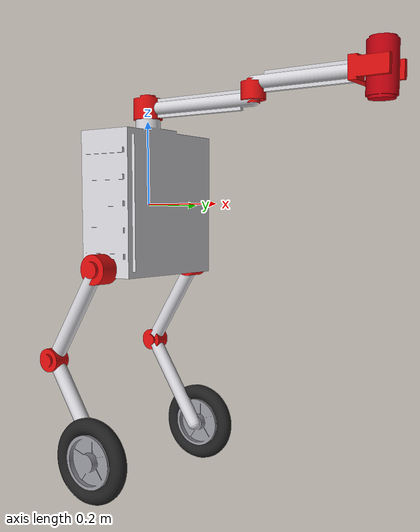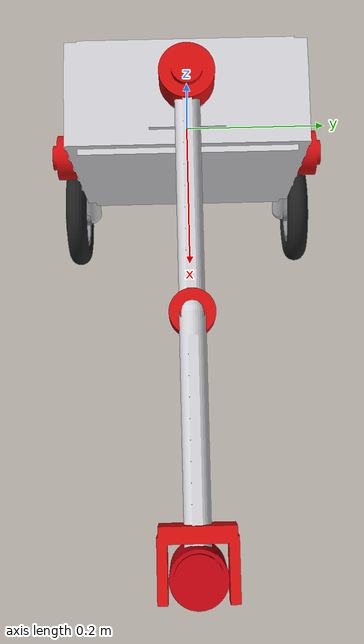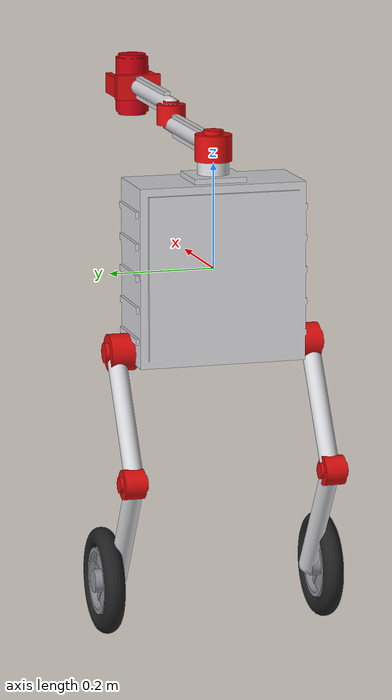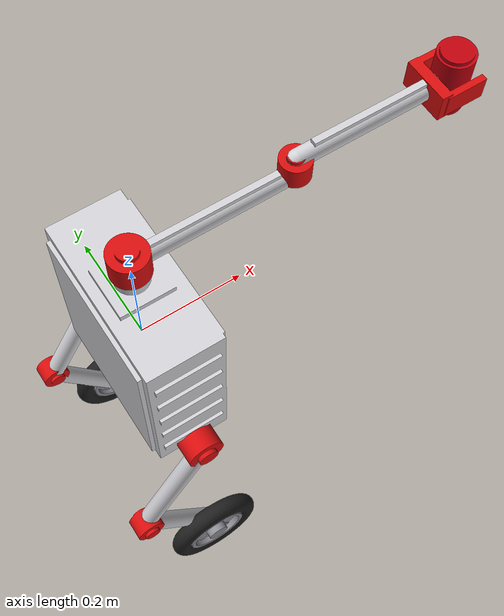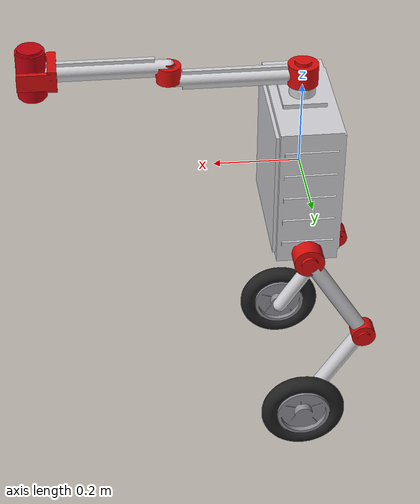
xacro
<?xml version="1.0"?>
<robot xmlns:xacro="http://www.ros.org/wiki/xacro" name="wheel_legged_robot">

  <xacro:arg name="payload_mass" default="0.36"/>   <!-- can of cola: 0.36 or 0.72 kg -->
  <xacro:arg name="use_gazebo" default="true"/>
  <xacro:arg name="controllers_file" default="$(find wheel_legged_arm_balance)/config/controllers.yaml"/>
  <xacro:arg name="wheel_damping" default="0.25"/>  <!-- c_r, c_l of Table 1 -->

  <xacro:property name="pkg" value="package://wheel_legged_arm_balance/meshes"/>
  <xacro:property name="PI" value="3.14159265358979"/>

  <!-- ===================== Table 1 parameters ===================== -->
  <xacro:property name="m_c" value="7.5"/>
  <xacro:property name="I_xx" value="0.0878"/>
  <xacro:property name="I_yy" value="0.0347"/>
  <xacro:property name="I_zz" value="0.0632"/>
  <xacro:property name="l_com" value="0.5914"/>
  <xacro:property name="m_w" value="0.35"/>
  <xacro:property name="r_w" value="0.1016"/>
  <xacro:property name="I_wa" value="0.0018"/>
  <xacro:property name="I_wd" value="0.000929"/>
  <xacro:property name="b" value="0.215"/>
  <xacro:property name="l1" value="0.3"/>
  <xacro:property name="l2" value="0.3"/>
  <xacro:property name="lg1" value="0.3"/>
  <xacro:property name="lg2" value="0.3"/>
  <xacro:property name="m1" value="0.6"/>
  <xacro:property name="m2" value="1.13"/>
  <xacro:property name="I1" value="0.018"/>
  <xacro:property name="I2" value="0.0339"/>

  <!-- ===================== Geometry (not in the paper) ===================== -->
  <xacro:property name="torso_x" value="0.14"/>
  <xacro:property name="torso_y" value="0.32"/>
  <xacro:property name="torso_z" value="0.34"/>
  <xacro:property name="pedestal_h" value="0.06"/>
  <xacro:property name="wheel_w" value="0.04"/>
  <xacro:property name="leg_len" value="0.26"/>
  <xacro:property name="hip_z" value="${-torso_z/2 + 0.02}"/>
  <xacro:property name="hip_y" value="0.19"/>
  <!-- knee bend so that the wheel axis is exactly l_com below the CoM -->
  <xacro:property name="leg_phi" value="${acos((l_com + hip_z) / (2.0*leg_len))}"/>
  <xacro:property name="shoulder_z" value="${torso_z/2 + pedestal_h}"/>
  <xacro:property name="elbow_dz" value="0.035"/>
  <!-- home posture of the arm: A_x_ee = 0.3, A_y_ee = 0 (elbow to the left) -->
  <xacro:property name="q1_home" value="${PI/3}"/>
  <xacro:property name="q2_home" value="${-2*PI/3}"/>
  <xacro:property name="can_r" value="0.033"/>
  <xacro:property name="can_h" value="0.122"/>

  <xacro:property name="tiny_mass" value="0.001"/>

  <material name="silver"><color rgba="0.82 0.82 0.84 1"/></material>
  <material name="red"><color rgba="0.85 0.05 0.05 1"/></material>
  <material name="dark"><color rgba="0.12 0.12 0.12 1"/></material>
  <material name="grey"><color rgba="0.55 0.55 0.58 1"/></material>
  <material name="coke"><color rgba="0.75 0.0 0.05 1"/></material>

  <xacro:macro name="tiny_inertial">
    <inertial>
      <mass value="${tiny_mass}"/>
      <inertia ixx="1e-6" ixy="0" ixz="0" iyy="1e-6" iyz="0" izz="1e-6"/>
    </inertial>
  </xacro:macro>

  <xacro:macro name="visual_part" params="name parent mesh material gz_material xyz:='0 0 0' rpy:='0 0 0' scale:='1 1 1'">
    <joint name="${name}_joint" type="fixed">
      <parent link="${parent}"/>
      <child link="${name}"/>
      <origin xyz="${xyz}" rpy="${rpy}"/>
    </joint>
    <link name="${name}">
      <visual>
        <geometry><mesh filename="${pkg}/${mesh}" scale="${scale}"/></geometry>
        <material name="${material}"/>
      </visual>
    </link>
    <gazebo reference="${name}"><material>${gz_material}</material></gazebo>
  </xacro:macro>

  <!-- ===================== Body ===================== -->
  <link name="base_link">
    <visual>
      <geometry><mesh filename="${pkg}/torso.stl"/></geometry>
      <material name="silver"/>
    </visual>
    <collision>
      <geometry><box size="${torso_x} ${torso_y} ${torso_z}"/></geometry>
    </collision>
    <inertial>
      <origin xyz="0 0 0"/>
      <mass value="${m_c}"/>
      <inertia ixx="${I_xx}" ixy="0" ixz="0" iyy="${I_yy}" iyz="0" izz="${I_zz}"/>
    </inertial>
  </link>

  <gazebo reference="base_link"><material>Gazebo/White</material></gazebo>
  <!-- hip actuators -->
  <xacro:visual_part name="hip_motor_left_link" parent="base_link" mesh="motor.stl" material="red"
                     gz_material="Gazebo/Red" xyz="0 ${torso_y/2 + 0.02} ${hip_z}" rpy="${PI/2} 0 0"/>
  <xacro:visual_part name="hip_motor_right_link" parent="base_link" mesh="motor.stl" material="red"
                     gz_material="Gazebo/Red" xyz="0 ${-torso_y/2 - 0.02} ${hip_z}" rpy="${PI/2} 0 0"/>

  <!-- ===================== Legs + wheels ===================== -->
  <xacro:macro name="leg" params="side sign">
    <!-- fixed hip: thigh goes down and backwards -->
    <joint name="hip_${side}_joint" type="fixed">
      <parent link="base_link"/>
      <child link="thigh_${side}_link"/>
      <origin xyz="0 ${sign*hip_y} ${hip_z}" rpy="0 ${leg_phi} 0"/>
    </joint>
    <link name="thigh_${side}_link">
      <visual>
        <geometry><mesh filename="${pkg}/leg_link.stl"/></geometry>
        <material name="silver"/>
      </visual>
      <xacro:tiny_inertial/>
    </link>
    <gazebo reference="thigh_${side}_link"><material>Gazebo/White</material></gazebo>
    <gazebo reference="shank_${side}_link"><material>Gazebo/White</material></gazebo>
    <!-- fixed knee -->
    <joint name="knee_${side}_joint" type="fixed">
      <parent link="thigh_${side}_link"/>
      <child link="shank_${side}_link"/>
      <origin xyz="0 0 ${-leg_len}" rpy="0 ${-2*leg_phi} 0"/>
    </joint>
    <xacro:visual_part name="knee_motor_${side}_link" parent="shank_${side}_link" mesh="motor.stl"
                       material="red" gz_material="Gazebo/Red" xyz="0 ${sign*0.004} 0"
                       rpy="${PI/2} 0 0" scale="0.8 0.8 0.8"/>
    <link name="shank_${side}_link">
      <visual>
        <geometry><mesh filename="${pkg}/leg_link.stl"/></geometry>
        <material name="silver"/>
      </visual>
      <xacro:tiny_inertial/>
    </link>
    <!-- wheel joint: axis +Y for both wheels, so positive rotation = forward rolling -->
    <joint name="wheel_${side}_joint" type="continuous">
      <parent link="shank_${side}_link"/>
      <child link="wheel_${side}_link"/>
      <origin xyz="0 ${sign*(b - hip_y)} ${-leg_len}" rpy="0 ${leg_phi} 0"/>
      <axis xyz="0 1 0"/>
      <limit effort="40" velocity="60"/>
      <dynamics damping="$(arg wheel_damping)" friction="0.0"/>
    </joint>
    <link name="wheel_${side}_link">
      <visual>
        <geometry><mesh filename="${pkg}/wheel_tyre.stl"/></geometry>
        <material name="dark"/>
      </visual>
      <collision>
        <origin xyz="0 0 0" rpy="${PI/2} 0 0"/>
        <geometry><cylinder radius="${r_w}" length="${wheel_w}"/></geometry>
      </collision>
      <inertial>
        <mass value="${m_w}"/>
        <!-- I_wa about the wheel axis (Y), I_wd about a diameter -->
        <inertia ixx="${I_wd}" ixy="0" ixz="0" iyy="${I_wa}" iyz="0" izz="${I_wd}"/>
      </inertial>
    </link>
    <xacro:visual_part name="wheel_rim_${side}_link" parent="wheel_${side}_link" mesh="wheel_rim.stl"
                       material="grey" gz_material="Gazebo/DarkGrey"/>
  </xacro:macro>

  <xacro:leg side="left" sign="1"/>
  <xacro:leg side="right" sign="-1"/>

  <!-- ===================== Arm (Fig. 3) ===================== -->
  <joint name="arm_base_joint" type="fixed">
    <parent link="base_link"/>
    <child link="arm_base_link"/>
    <origin xyz="0 0 ${shoulder_z}" rpy="0 0 0"/>
  </joint>
  <link name="arm_base_link">
    <visual>
      <geometry><mesh filename="${pkg}/motor.stl"/></geometry>
      <material name="red"/>
    </visual>
    <xacro:tiny_inertial/>
  </link>

  <gazebo reference="arm_base_link"><material>Gazebo/Red</material></gazebo>

  <joint name="arm_joint_1" type="revolute">
    <parent link="arm_base_link"/>
    <child link="arm_link_1"/>
    <origin xyz="0 0 0.0" rpy="0 0 0"/>
    <axis xyz="0 0 1"/>
    <limit lower="${-PI}" upper="${PI}" effort="30" velocity="15"/>
    <dynamics damping="0.0" friction="0.0"/>
  </joint>
  <link name="arm_link_1">
    <visual>
      <geometry><mesh filename="${pkg}/arm_link.stl"/></geometry>
      <material name="silver"/>
    </visual>
    <inertial>
      <!-- point mass at the far end of the link (paper assumption), I1 about Z -->
      <origin xyz="${lg1} 0 0"/>
      <mass value="${m1}"/>
      <inertia ixx="0.001" ixy="0" ixz="0" iyy="${I1}" iyz="0" izz="${I1}"/>
    </inertial>
  </link>

  <gazebo reference="arm_link_1"><material>Gazebo/White</material></gazebo>
  <xacro:visual_part name="elbow_motor_link" parent="arm_link_1" mesh="motor.stl" material="red"
                     gz_material="Gazebo/Red" xyz="${l1} 0 ${elbow_dz/2}" scale="0.8 0.8 0.8"/>

  <joint name="arm_joint_2" type="revolute">
    <parent link="arm_link_1"/>
    <child link="arm_link_2"/>
    <origin xyz="${l1} 0 ${elbow_dz}" rpy="0 0 0"/>
    <axis xyz="0 0 1"/>
    <limit lower="${-0.97*PI}" upper="${0.97*PI}" effort="30" velocity="15"/>
    <dynamics damping="0.0" friction="0.0"/>
  </joint>
  <link name="arm_link_2">
    <visual>
      <geometry><mesh filename="${pkg}/arm_link.stl"/></geometry>
      <material name="silver"/>
    </visual>
    <inertial>
      <origin xyz="${lg2} 0 0"/>
      <mass value="${m2}"/>
      <inertia ixx="0.001" ixy="0" ixz="0" iyy="${I2}" iyz="0" izz="${I2}"/>
    </inertial>
  </link>

  <!-- end-effector frame (Sigma_A coordinates are computed in arm_base_link) -->
  <joint name="ee_joint" type="fixed">
    <parent link="arm_link_2"/>
    <child link="ee_link"/>
    <origin xyz="${l2} 0 0"/>
  </joint>
  <link name="ee_link">
    <visual>
      <geometry><mesh filename="${pkg}/gripper.stl"/></geometry>
      <material name="red"/>
    </visual>
  </link>
  <gazebo reference="arm_link_2"><material>Gazebo/White</material></gazebo>
  <gazebo reference="ee_link"><material>Gazebo/Red</material></gazebo>

  <!-- payload: can of cola held at the end-effector -->
  <joint name="payload_joint" type="fixed">
    <parent link="ee_link"/>
    <child link="payload_link"/>
    <origin xyz="0 0 0"/>
  </joint>
  <link name="payload_link">
    <visual>
      <geometry><mesh filename="${pkg}/can.stl"/></geometry>
      <material name="coke"/>
    </visual>
    <inertial>
      <mass value="$(arg payload_mass)"/>
      <inertia ixx="${$(arg payload_mass)*(3*can_r*can_r + can_h*can_h)/12}" ixy="0" ixz="0"
               iyy="${$(arg payload_mass)*(3*can_r*can_r + can_h*can_h)/12}" iyz="0"
               izz="${$(arg payload_mass)*can_r*can_r/2}"/>
    </inertial>
  </link>

  <gazebo reference="payload_link"><material>Gazebo/RedBright</material></gazebo>

  <!-- IMU at the body CoM -->
  <joint name="imu_joint" type="fixed">
    <parent link="base_link"/>
    <child link="imu_link"/>
    <origin xyz="0 0 0"/>
  </joint>
  <link name="imu_link"/>

  <xacro:if value="$(arg use_gazebo)">
    <xacro:include filename="$(find wheel_legged_arm_balance)/urdf/wheel_legged_robot.ros2_control.xacro"/>
    <xacro:wlr_ros2_control q1_home="${q1_home}" q2_home="${q2_home}"
                            controllers_file="$(arg controllers_file)"/>
  </xacro:if>
</robot>
